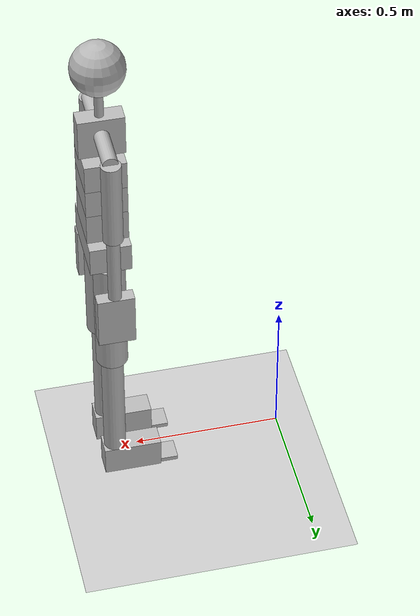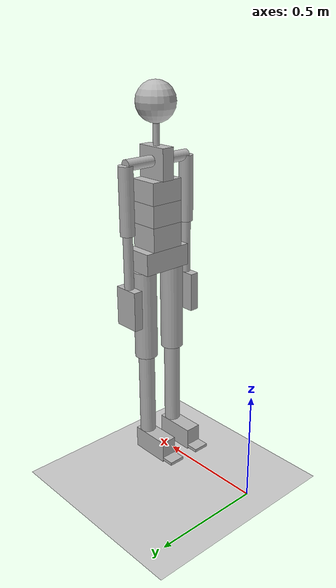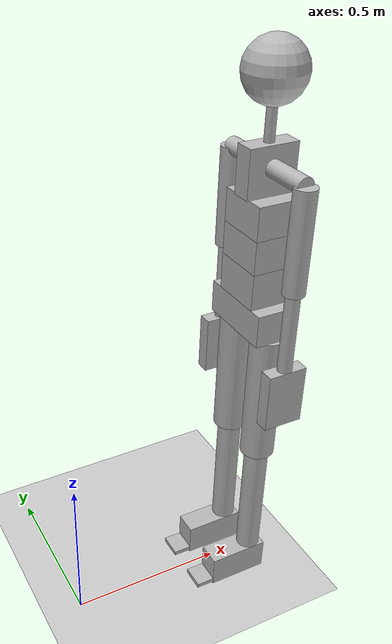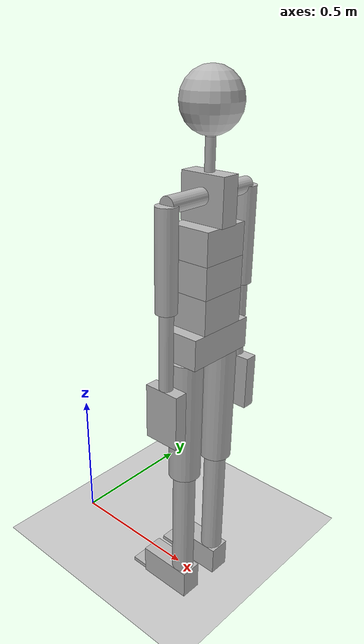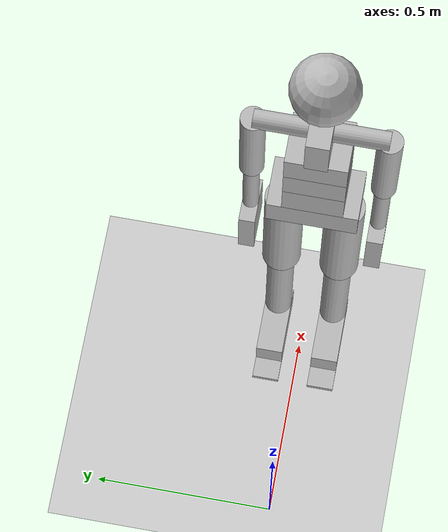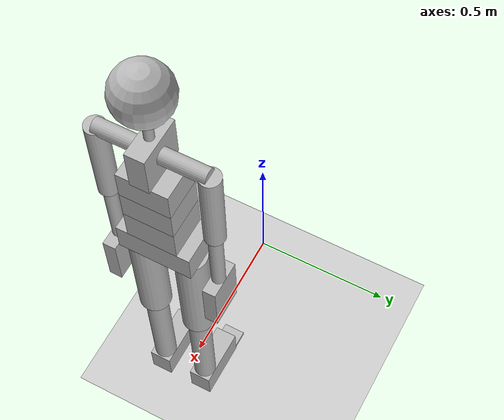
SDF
<?xml version="1.0"?>
<sdf version="1.4">
  <world name="default">

    <!-- Light -->
    <include>
      <uri>model://sun</uri>
    </include>

    <!-- Ground Plane -->
    <include>
      <uri>model://ground_plane</uri>
    </include>

    <!-- Human model in upright position -->
    <include>
        <uri>model://sub0</uri>
        <pose>0.59 0 0.9325 0 0 3.14</pose>
    </include>

  </world>
</sdf>
